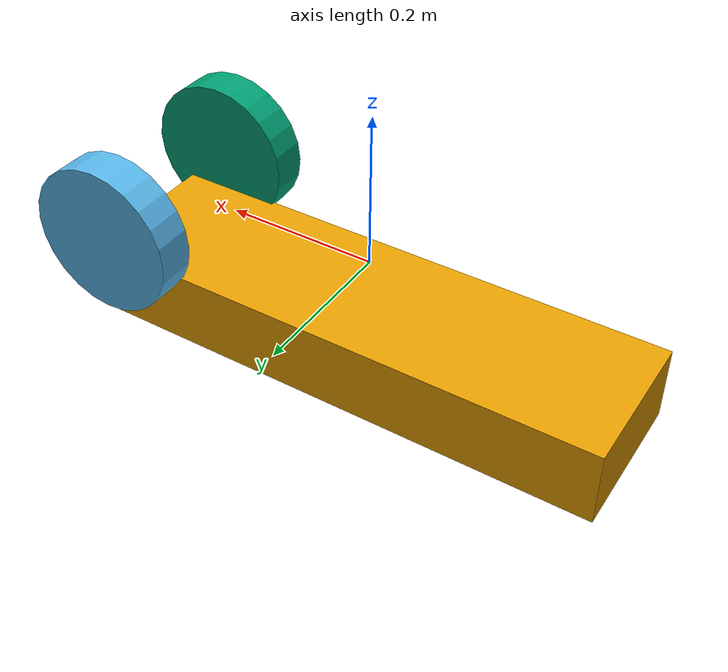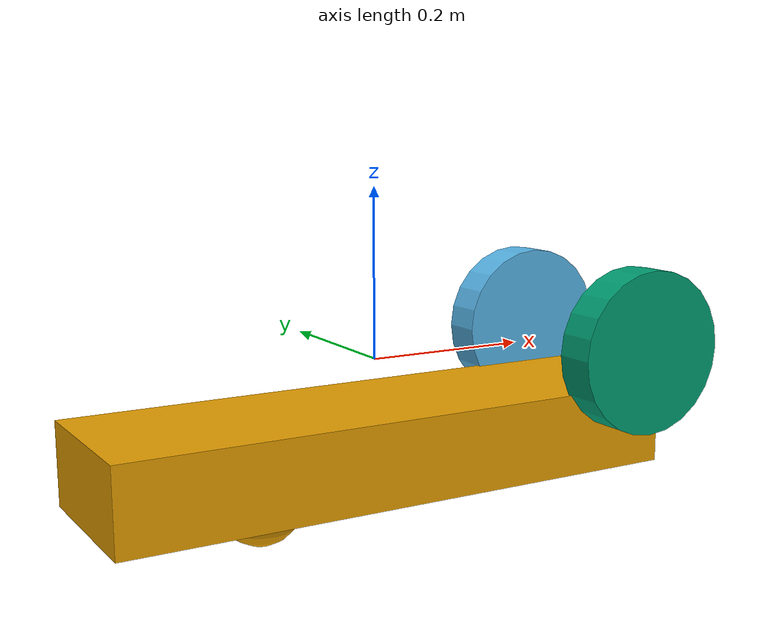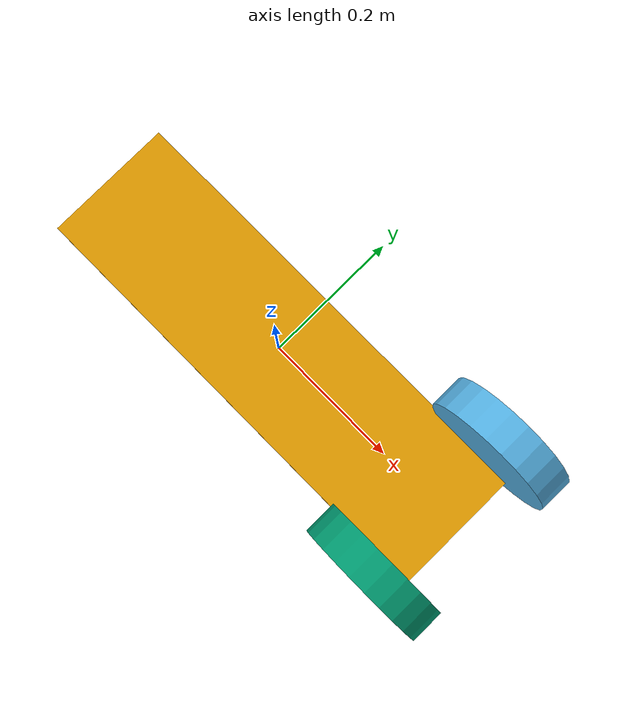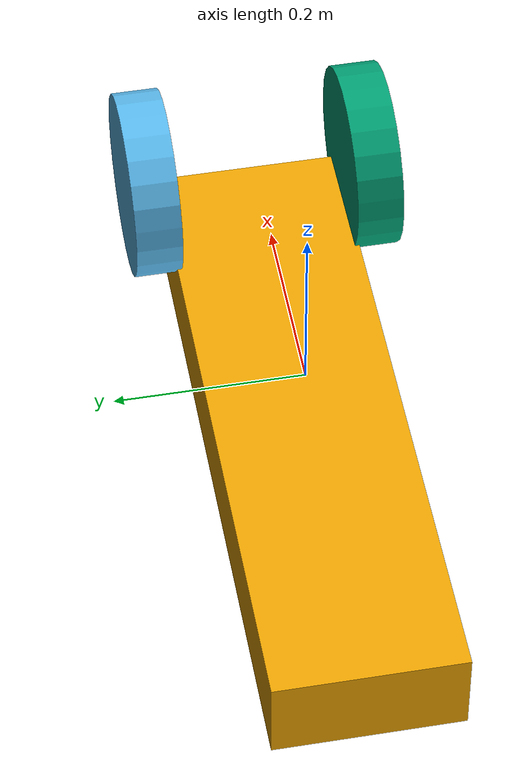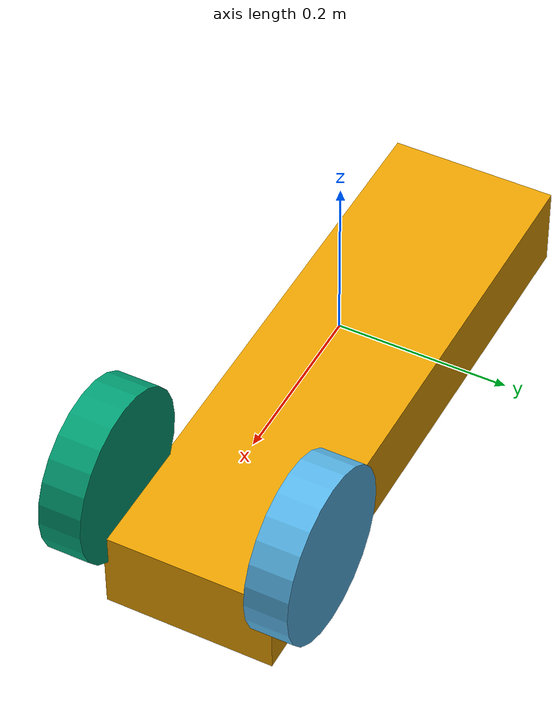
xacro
<?xml version="1.0" ?>
<robot name="ur3" xmlns:xacro="http://www.ros.org/wiki/xacro">

<!-- origin values for each link -->
 <xacro:property name="chassis_origin">
    <origin xyz="0 0 -0.1" rpy="0 0 0"/>
 </xacro:property>
 <xacro:property name="caster_origin">
    <origin xyz="-0.15 0 -0.15" rpy="0 0 0"/>
 </xacro:property>
<xacro:property name="left_wheel_origin">
    <origin xyz="0.3 0.12 -0.05" rpy="0 1.5707 1.5707"/>
 </xacro:property>
<xacro:property name="right_wheel_origin">
    <origin xyz="0.3 -0.12 -0.05" rpy="0 1.5707 1.5707"/>
 </xacro:property>

<!-- chassis link -->

   <link name="chassis">
    <visual name='chassis_visual'>
      <geometry>
        <box size="0.7 0.2 0.1"/>
      </geometry>
      <xacro:insert_block name="chassis_origin"/>
    </visual>
    <collision name='chassis_collision'>
      <geometry>
        <box size="0.7 0.2 0.1"/>
      </geometry>
      <xacro:insert_block name="chassis_origin"/>
    </collision>
    <inertial name='chassis_inertial'>
      <mass value="2.0"/>
      <xacro:insert_block name="chassis_origin"/>
      <inertia ixx="0.0030531654454" ixy="0.0" ixz="0.0" iyy="0.0030531654454" iyz="0.0" izz="0.005625"/>
    </inertial>
    <visual name='caster_visual'>
      <geometry>
        <sphere radius=".05" />
      </geometry>
      <xacro:insert_block name="caster_origin"/>
    </visual>
    <collision name='caster_collision'>
      <geometry>
        <sphere radius=".05" />
      </geometry>
      <xacro:insert_block name="caster_origin"/>
      <surface>
        <friction>
          <ode>
            <mu>0</mu>
            <mu2>0</mu2>
            <slip1>1.0</slip1>
            <slip2>1.0</slip2>
          </ode>
        </friction>
      </surface>
    </collision>
    <inertial name='caster_inertial'>
      <mass value="2.0"/>
      <xacro:insert_block name="caster_origin"/>
      <inertia ixx="0.0030531654454" ixy="0.0" ixz="0.0" iyy="0.0030531654454" iyz="0.0" izz="0.005625"/>
    </inertial>
   </link>

<!-- left wheel joint -->

 <joint name="left_wheel_hinge" type="continuous">
    <parent link="chassis"/>
    <child link="left_wheel"/>
    <origin xyz="0.0 0.0 0.05" rpy="0.0 0.0 0.0"/>
    <axis xyz="0 1 0"/>
    <dynamics damping="0.0" friction="0.0"/>
  </joint>

<!-- left wheel link -->

  <link name="left_wheel">
    <collision name="left_collision">
      <geometry>
        <cylinder radius="0.1" length="0.05"/>
      </geometry>
    <xacro:insert_block name="left_wheel_origin"/>
    </collision>
    <visual name="left_visual">
      <geometry>
        <cylinder radius="0.1" length="0.05"/>
      </geometry>
      <xacro:insert_block name="left_wheel_origin"/>
    </visual>
    <inertial name='left_inertial'>
      <mass value="2.0"/>
      <xacro:insert_block name="left_wheel_origin"/>
      <inertia ixx="0.0030531654454" ixy="0.0" ixz="0.0" iyy="0.0030531654454" iyz="0.0" izz="0.005625"/>
    </inertial>
  </link>

  <!-- right wheel joint -->

 <joint name="right_wheel_hinge" type="continuous">
    <parent link="chassis"/>
    <child link="right_wheel"/>
    <origin xyz="0.0 0.0 0.05" rpy="0.0 0.0 0.0"/>
    <axis xyz="0 1 0"/>
    <dynamics damping="0.0" friction="0.0"/>
  </joint>

<!-- right wheel link -->

  <link name="right_wheel">
    <collision name="right_collision">
      <geometry>
        <cylinder radius="0.1" length="0.05"/>
      </geometry>
    <xacro:insert_block name="right_wheel_origin"/>
    </collision>
    <visual name="right_visual">
      <geometry>
        <cylinder radius="0.1" length="0.05"/>
      </geometry>
      <xacro:insert_block name="right_wheel_origin"/>
    </visual>
    <inertial name='right_inertial'>
      <mass value="2.0"/>
      <xacro:insert_block name="right_wheel_origin"/>
      <inertia ixx="0.0030531654454" ixy="0.0" ixz="0.0" iyy="0.0030531654454" iyz="0.0" izz="0.005625"/>
    </inertial>
  </link>

</robot>
